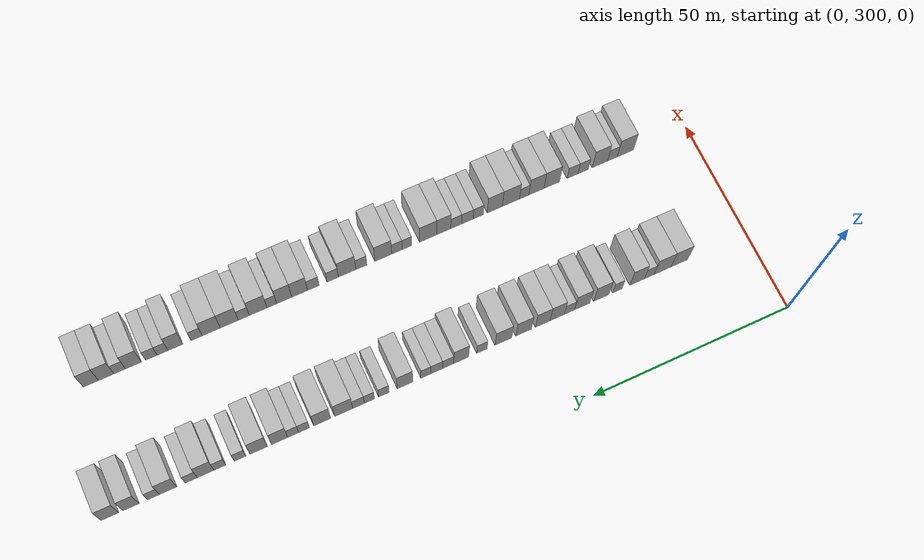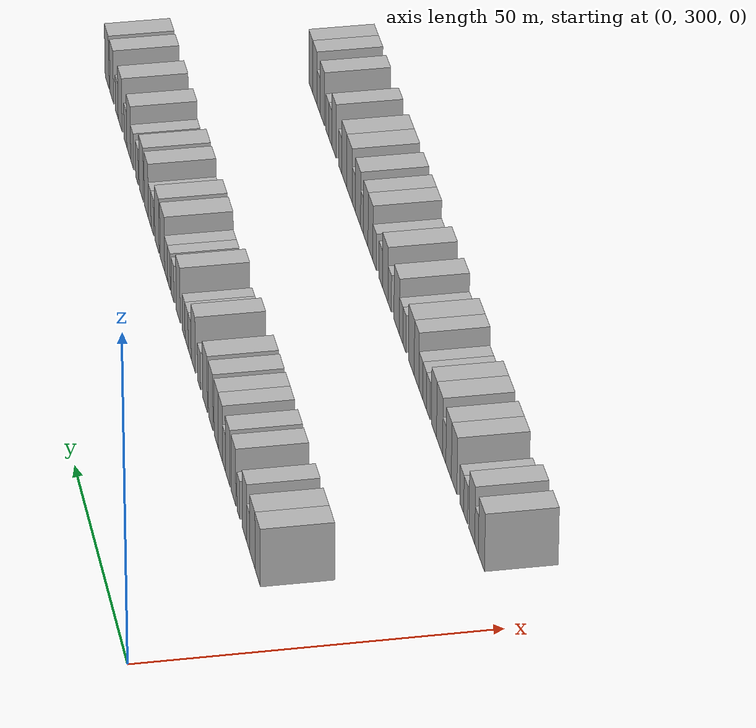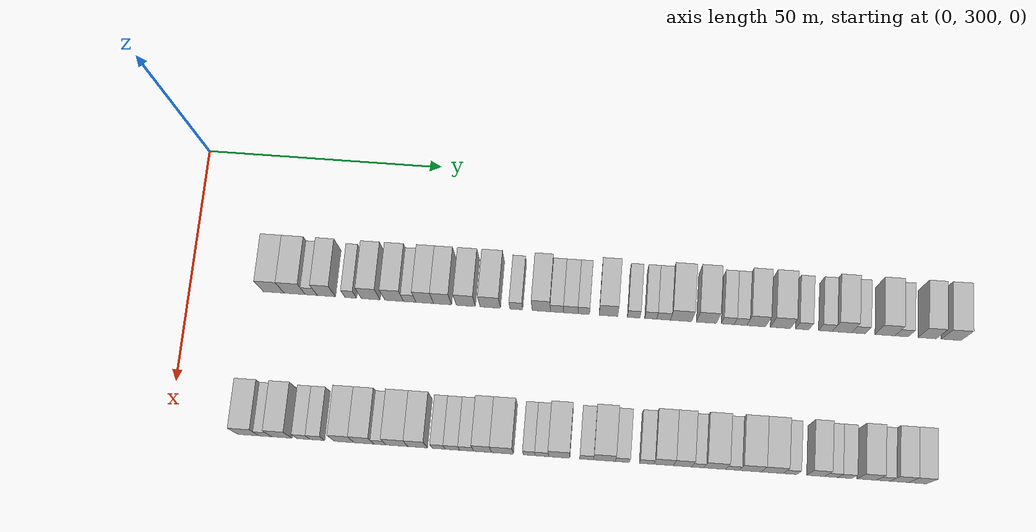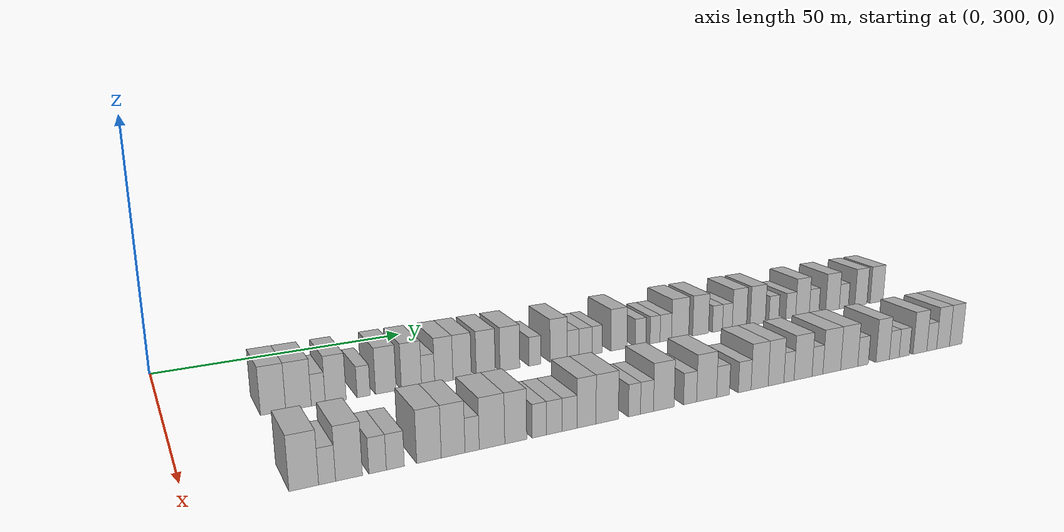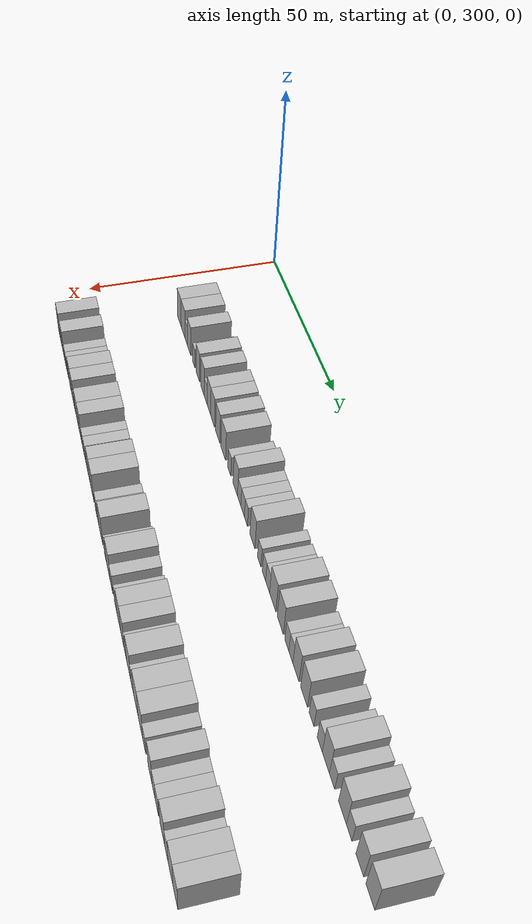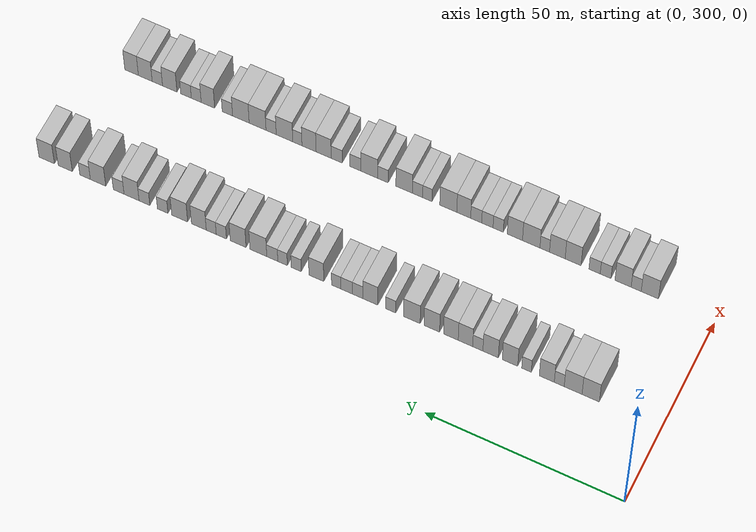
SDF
<sdf version="1.6">
 <world name="default">
  <model name="building_173">
   <static>1</static>
   <pose>25.0000 317.6659 0 0.000000 0.000000 0.000000</pose>
   <link name="link">
    <pose>0 0 4.50 0 0 0</pose>
    <collision name="collision"><geometry><box><size>10.0000 4.3493 9.0000</size></box></geometry></collision>
    <visual name="visual">
     <cast_shadows>0</cast_shadows>
     <geometry><box><size>10.0000 4.3493 9.0000</size></box></geometry>
     <material>
      <script>
       <uri>model://HANNAS_wall/materials/scripts</uri>
       <uri>model://HANNAS_wall/materials/textures</uri>
       <name>vrc/HANNAS_wall</name>
      </script>
     </material>
    </visual>
   </link>
  </model>
  <model name="building_174">
   <static>1</static>
   <pose>25.0000 322.0855 0 0.000000 0.000000 0.000000</pose>
   <link name="link">
    <pose>0 0 4.50 0 0 0</pose>
    <collision name="collision"><geometry><box><size>10.0000 4.4899 9.0000</size></box></geometry></collision>
    <visual name="visual">
     <cast_shadows>0</cast_shadows>
     <geometry><box><size>10.0000 4.4899 9.0000</size></box></geometry>
     <material>
      <script>
       <uri>model://HANNAS_wall/materials/scripts</uri>
       <uri>model://HANNAS_wall/materials/textures</uri>
       <name>vrc/HANNAS_wall</name>
      </script>
     </material>
    </visual>
   </link>
  </model>
  <model name="building_175">
   <static>1</static>
   <pose>25.0000 325.5803 0 0.000000 0.000000 0.000000</pose>
   <link name="link">
    <pose>0 0 3.00 0 0 0</pose>
    <collision name="collision"><geometry><box><size>10.0000 2.4997 6.0000</size></box></geometry></collision>
    <visual name="visual">
     <cast_shadows>0</cast_shadows>
     <geometry><box><size>10.0000 2.4997 6.0000</size></box></geometry>
     <material>
      <script>
       <uri>model://HANNAS_wall/materials/scripts</uri>
       <uri>model://HANNAS_wall/materials/textures</uri>
       <name>vrc/HANNAS_wall</name>
      </script>
     </material>
    </visual>
   </link>
  </model>
  <model name="building_176">
   <static>1</static>
   <pose>25.0000 328.7298 0 0.000000 0.000000 0.000000</pose>
   <link name="link">
    <pose>0 0 4.50 0 0 0</pose>
    <collision name="collision"><geometry><box><size>10.0000 3.7992 9.0000</size></box></geometry></collision>
    <visual name="visual">
     <cast_shadows>0</cast_shadows>
     <geometry><box><size>10.0000 3.7992 9.0000</size></box></geometry>
     <material>
      <script>
       <uri>model://HANNAS_wall/materials/scripts</uri>
       <uri>model://HANNAS_wall/materials/textures</uri>
       <name>vrc/HANNAS_wall</name>
      </script>
     </material>
    </visual>
   </link>
  </model>
  <model name="building_177">
   <static>1</static>
   <pose>25.0000 333.8471 0 0.000000 0.000000 0.000000</pose>
   <link name="link">
    <pose>0 0 3.00 0 0 0</pose>
    <collision name="collision"><geometry><box><size>10.0000 2.4356 6.0000</size></box></geometry></collision>
    <visual name="visual">
     <cast_shadows>0</cast_shadows>
     <geometry><box><size>10.0000 2.4356 6.0000</size></box></geometry>
     <material>
      <script>
       <uri>model://HANNAS_wall/materials/scripts</uri>
       <uri>model://HANNAS_wall/materials/textures</uri>
       <name>vrc/HANNAS_wall</name>
      </script>
     </material>
    </visual>
   </link>
  </model>
  <model name="building_178">
   <static>1</static>
   <pose>25.0000 338.0268 0 0.000000 0.000000 0.000000</pose>
   <link name="link">
    <pose>0 0 4.50 0 0 0</pose>
    <collision name="collision"><geometry><box><size>10.0000 3.9238 9.0000</size></box></geometry></collision>
    <visual name="visual">
     <cast_shadows>0</cast_shadows>
     <geometry><box><size>10.0000 3.9238 9.0000</size></box></geometry>
     <material>
      <script>
       <uri>model://HANNAS_wall/materials/scripts</uri>
       <uri>model://HANNAS_wall/materials/textures</uri>
       <name>vrc/HANNAS_wall</name>
      </script>
     </material>
    </visual>
   </link>
  </model>
  <model name="building_179">
   <static>1</static>
   <pose>25.0000 342.9497 0 0.000000 0.000000 0.000000</pose>
   <link name="link">
    <pose>0 0 4.50 0 0 0</pose>
    <collision name="collision"><geometry><box><size>10.0000 3.9221 9.0000</size></box></geometry></collision>
    <visual name="visual">
     <cast_shadows>0</cast_shadows>
     <geometry><box><size>10.0000 3.9221 9.0000</size></box></geometry>
     <material>
      <script>
       <uri>model://HANNAS_wall/materials/scripts</uri>
       <uri>model://HANNAS_wall/materials/textures</uri>
       <name>vrc/HANNAS_wall</name>
      </script>
     </material>
    </visual>
   </link>
  </model>
  <model name="building_180">
   <static>1</static>
   <pose>25.0000 346.2119 0 0.000000 0.000000 0.000000</pose>
   <link name="link">
    <pose>0 0 3.00 0 0 0</pose>
    <collision name="collision"><geometry><box><size>10.0000 2.6023 6.0000</size></box></geometry></collision>
    <visual name="visual">
     <cast_shadows>0</cast_shadows>
     <geometry><box><size>10.0000 2.6023 6.0000</size></box></geometry>
     <material>
      <script>
       <uri>model://HANNAS_wall/materials/scripts</uri>
       <uri>model://HANNAS_wall/materials/textures</uri>
       <name>vrc/HANNAS_wall</name>
      </script>
     </material>
    </visual>
   </link>
  </model>
  <model name="building_181">
   <static>1</static>
   <pose>25.0000 349.3515 0 0.000000 0.000000 0.000000</pose>
   <link name="link">
    <pose>0 0 4.50 0 0 0</pose>
    <collision name="collision"><geometry><box><size>10.0000 3.6768 9.0000</size></box></geometry></collision>
    <visual name="visual">
     <cast_shadows>0</cast_shadows>
     <geometry><box><size>10.0000 3.6768 9.0000</size></box></geometry>
     <material>
      <script>
       <uri>model://HANNAS_wall/materials/scripts</uri>
       <uri>model://HANNAS_wall/materials/textures</uri>
       <name>vrc/HANNAS_wall</name>
      </script>
     </material>
    </visual>
   </link>
  </model>
  <model name="building_182">
   <static>1</static>
   <pose>25.0000 353.0642 0 0.000000 0.000000 0.000000</pose>
   <link name="link">
    <pose>0 0 4.50 0 0 0</pose>
    <collision name="collision"><geometry><box><size>10.0000 3.7486 9.0000</size></box></geometry></collision>
    <visual name="visual">
     <cast_shadows>0</cast_shadows>
     <geometry><box><size>10.0000 3.7486 9.0000</size></box></geometry>
     <material>
      <script>
       <uri>model://HANNAS_wall/materials/scripts</uri>
       <uri>model://HANNAS_wall/materials/textures</uri>
       <name>vrc/HANNAS_wall</name>
      </script>
     </material>
    </visual>
   </link>
  </model>
  <model name="building_183">
   <static>1</static>
   <pose>25.0000 357.9284 0 0.000000 0.000000 0.000000</pose>
   <link name="link">
    <pose>0 0 4.50 0 0 0</pose>
    <collision name="collision"><geometry><box><size>10.0000 3.9799 9.0000</size></box></geometry></collision>
    <visual name="visual">
     <cast_shadows>0</cast_shadows>
     <geometry><box><size>10.0000 3.9799 9.0000</size></box></geometry>
     <material>
      <script>
       <uri>model://HANNAS_wall/materials/scripts</uri>
       <uri>model://HANNAS_wall/materials/textures</uri>
       <name>vrc/HANNAS_wall</name>
      </script>
     </material>
    </visual>
   </link>
  </model>
  <model name="building_184">
   <static>1</static>
   <pose>25.0000 363.0372 0 0.000000 0.000000 0.000000</pose>
   <link name="link">
    <pose>0 0 4.50 0 0 0</pose>
    <collision name="collision"><geometry><box><size>10.0000 4.2378 9.0000</size></box></geometry></collision>
    <visual name="visual">
     <cast_shadows>0</cast_shadows>
     <geometry><box><size>10.0000 4.2378 9.0000</size></box></geometry>
     <material>
      <script>
       <uri>model://HANNAS_wall/materials/scripts</uri>
       <uri>model://HANNAS_wall/materials/textures</uri>
       <name>vrc/HANNAS_wall</name>
      </script>
     </material>
    </visual>
   </link>
  </model>
  <model name="building_185">
   <static>1</static>
   <pose>25.0000 368.4719 0 0.000000 0.000000 0.000000</pose>
   <link name="link">
    <pose>0 0 3.00 0 0 0</pose>
    <collision name="collision"><geometry><box><size>10.0000 2.6317 6.0000</size></box></geometry></collision>
    <visual name="visual">
     <cast_shadows>0</cast_shadows>
     <geometry><box><size>10.0000 2.6317 6.0000</size></box></geometry>
     <material>
      <script>
       <uri>model://HANNAS_wall/materials/scripts</uri>
       <uri>model://HANNAS_wall/materials/textures</uri>
       <name>vrc/HANNAS_wall</name>
      </script>
     </material>
    </visual>
   </link>
  </model>
  <model name="building_186">
   <static>1</static>
   <pose>25.0000 373.6817 0 0.000000 0.000000 0.000000</pose>
   <link name="link">
    <pose>0 0 4.50 0 0 0</pose>
    <collision name="collision"><geometry><box><size>10.0000 3.7877 9.0000</size></box></geometry></collision>
    <visual name="visual">
     <cast_shadows>0</cast_shadows>
     <geometry><box><size>10.0000 3.7877 9.0000</size></box></geometry>
     <material>
      <script>
       <uri>model://HANNAS_wall/materials/scripts</uri>
       <uri>model://HANNAS_wall/materials/textures</uri>
       <name>vrc/HANNAS_wall</name>
      </script>
     </material>
    </visual>
   </link>
  </model>
  <model name="building_187">
   <static>1</static>
   <pose>25.0000 376.9540 0 0.000000 0.000000 0.000000</pose>
   <link name="link">
    <pose>0 0 3.00 0 0 0</pose>
    <collision name="collision"><geometry><box><size>10.0000 2.7570 6.0000</size></box></geometry></collision>
    <visual name="visual">
     <cast_shadows>0</cast_shadows>
     <geometry><box><size>10.0000 2.7570 6.0000</size></box></geometry>
     <material>
      <script>
       <uri>model://HANNAS_wall/materials/scripts</uri>
       <uri>model://HANNAS_wall/materials/textures</uri>
       <name>vrc/HANNAS_wall</name>
      </script>
     </material>
    </visual>
   </link>
  </model>
  <model name="building_188">
   <static>1</static>
   <pose>25.0000 379.8238 0 0.000000 0.000000 0.000000</pose>
   <link name="link">
    <pose>0 0 3.00 0 0 0</pose>
    <collision name="collision"><geometry><box><size>10.0000 2.9827 6.0000</size></box></geometry></collision>
    <visual name="visual">
     <cast_shadows>0</cast_shadows>
     <geometry><box><size>10.0000 2.9827 6.0000</size></box></geometry>
     <material>
      <script>
       <uri>model://HANNAS_wall/materials/scripts</uri>
       <uri>model://HANNAS_wall/materials/textures</uri>
       <name>vrc/HANNAS_wall</name>
      </script>
     </material>
    </visual>
   </link>
  </model>
  <model name="building_189">
   <static>1</static>
   <pose>25.0000 382.5248 0 0.000000 0.000000 0.000000</pose>
   <link name="link">
    <pose>0 0 3.00 0 0 0</pose>
    <collision name="collision"><geometry><box><size>10.0000 2.4192 6.0000</size></box></geometry></collision>
    <visual name="visual">
     <cast_shadows>0</cast_shadows>
     <geometry><box><size>10.0000 2.4192 6.0000</size></box></geometry>
     <material>
      <script>
       <uri>model://HANNAS_wall/materials/scripts</uri>
       <uri>model://HANNAS_wall/materials/textures</uri>
       <name>vrc/HANNAS_wall</name>
      </script>
     </material>
    </visual>
   </link>
  </model>
  <model name="building_190">
   <static>1</static>
   <pose>25.0000 387.6649 0 0.000000 0.000000 0.000000</pose>
   <link name="link">
    <pose>0 0 4.50 0 0 0</pose>
    <collision name="collision"><geometry><box><size>10.0000 3.8609 9.0000</size></box></geometry></collision>
    <visual name="visual">
     <cast_shadows>0</cast_shadows>
     <geometry><box><size>10.0000 3.8609 9.0000</size></box></geometry>
     <material>
      <script>
       <uri>model://HANNAS_wall/materials/scripts</uri>
       <uri>model://HANNAS_wall/materials/textures</uri>
       <name>vrc/HANNAS_wall</name>
      </script>
     </material>
    </visual>
   </link>
  </model>
  <model name="building_191">
   <static>1</static>
   <pose>25.0000 392.9015 0 0.000000 0.000000 0.000000</pose>
   <link name="link">
    <pose>0 0 3.00 0 0 0</pose>
    <collision name="collision"><geometry><box><size>10.0000 2.6124 6.0000</size></box></geometry></collision>
    <visual name="visual">
     <cast_shadows>0</cast_shadows>
     <geometry><box><size>10.0000 2.6124 6.0000</size></box></geometry>
     <material>
      <script>
       <uri>model://HANNAS_wall/materials/scripts</uri>
       <uri>model://HANNAS_wall/materials/textures</uri>
       <name>vrc/HANNAS_wall</name>
      </script>
     </material>
    </visual>
   </link>
  </model>
  <model name="building_192">
   <static>1</static>
   <pose>25.0000 396.4502 0 0.000000 0.000000 0.000000</pose>
   <link name="link">
    <pose>0 0 3.00 0 0 0</pose>
    <collision name="collision"><geometry><box><size>10.0000 2.4850 6.0000</size></box></geometry></collision>
    <visual name="visual">
     <cast_shadows>0</cast_shadows>
     <geometry><box><size>10.0000 2.4850 6.0000</size></box></geometry>
     <material>
      <script>
       <uri>model://HANNAS_wall/materials/scripts</uri>
       <uri>model://HANNAS_wall/materials/textures</uri>
       <name>vrc/HANNAS_wall</name>
      </script>
     </material>
    </visual>
   </link>
  </model>
  <model name="building_193">
   <static>1</static>
   <pose>25.0000 399.1308 0 0.000000 0.000000 0.000000</pose>
   <link name="link">
    <pose>0 0 3.00 0 0 0</pose>
    <collision name="collision"><geometry><box><size>10.0000 2.8762 6.0000</size></box></geometry></collision>
    <visual name="visual">
     <cast_shadows>0</cast_shadows>
     <geometry><box><size>10.0000 2.8762 6.0000</size></box></geometry>
     <material>
      <script>
       <uri>model://HANNAS_wall/materials/scripts</uri>
       <uri>model://HANNAS_wall/materials/textures</uri>
       <name>vrc/HANNAS_wall</name>
      </script>
     </material>
    </visual>
   </link>
  </model>
  <model name="building_194">
   <static>1</static>
   <pose>25.0000 402.7705 0 0.000000 0.000000 0.000000</pose>
   <link name="link">
    <pose>0 0 4.50 0 0 0</pose>
    <collision name="collision"><geometry><box><size>10.0000 4.4032 9.0000</size></box></geometry></collision>
    <visual name="visual">
     <cast_shadows>0</cast_shadows>
     <geometry><box><size>10.0000 4.4032 9.0000</size></box></geometry>
     <material>
      <script>
       <uri>model://HANNAS_wall/materials/scripts</uri>
       <uri>model://HANNAS_wall/materials/textures</uri>
       <name>vrc/HANNAS_wall</name>
      </script>
     </material>
    </visual>
   </link>
  </model>
  <model name="building_195">
   <static>1</static>
   <pose>25.0000 408.0443 0 0.000000 0.000000 0.000000</pose>
   <link name="link">
    <pose>0 0 4.50 0 0 0</pose>
    <collision name="collision"><geometry><box><size>10.0000 4.1444 9.0000</size></box></geometry></collision>
    <visual name="visual">
     <cast_shadows>0</cast_shadows>
     <geometry><box><size>10.0000 4.1444 9.0000</size></box></geometry>
     <material>
      <script>
       <uri>model://HANNAS_wall/materials/scripts</uri>
       <uri>model://HANNAS_wall/materials/textures</uri>
       <name>vrc/HANNAS_wall</name>
      </script>
     </material>
    </visual>
   </link>
  </model>
  <model name="building_196">
   <static>1</static>
   <pose>25.0000 412.4544 0 0.000000 0.000000 0.000000</pose>
   <link name="link">
    <pose>0 0 3.00 0 0 0</pose>
    <collision name="collision"><geometry><box><size>10.0000 2.6759 6.0000</size></box></geometry></collision>
    <visual name="visual">
     <cast_shadows>0</cast_shadows>
     <geometry><box><size>10.0000 2.6759 6.0000</size></box></geometry>
     <material>
      <script>
       <uri>model://HANNAS_wall/materials/scripts</uri>
       <uri>model://HANNAS_wall/materials/textures</uri>
       <name>vrc/HANNAS_wall</name>
      </script>
     </material>
    </visual>
   </link>
  </model>
  <model name="building_197">
   <static>1</static>
   <pose>25.0000 415.1013 0 0.000000 0.000000 0.000000</pose>
   <link name="link">
    <pose>0 0 3.00 0 0 0</pose>
    <collision name="collision"><geometry><box><size>10.0000 2.6178 6.0000</size></box></geometry></collision>
    <visual name="visual">
     <cast_shadows>0</cast_shadows>
     <geometry><box><size>10.0000 2.6178 6.0000</size></box></geometry>
     <material>
      <script>
       <uri>model://HANNAS_wall/materials/scripts</uri>
       <uri>model://HANNAS_wall/materials/textures</uri>
       <name>vrc/HANNAS_wall</name>
      </script>
     </material>
    </visual>
   </link>
  </model>
  <model name="building_198">
   <static>1</static>
   <pose>25.0000 418.3592 0 0.000000 0.000000 0.000000</pose>
   <link name="link">
    <pose>0 0 4.50 0 0 0</pose>
    <collision name="collision"><geometry><box><size>10.0000 3.8979 9.0000</size></box></geometry></collision>
    <visual name="visual">
     <cast_shadows>0</cast_shadows>
     <geometry><box><size>10.0000 3.8979 9.0000</size></box></geometry>
     <material>
      <script>
       <uri>model://HANNAS_wall/materials/scripts</uri>
       <uri>model://HANNAS_wall/materials/textures</uri>
       <name>vrc/HANNAS_wall</name>
      </script>
     </material>
    </visual>
   </link>
  </model>
  <model name="building_199">
   <static>1</static>
   <pose>25.0000 423.4031 0 0.000000 0.000000 0.000000</pose>
   <link name="link">
    <pose>0 0 4.50 0 0 0</pose>
    <collision name="collision"><geometry><box><size>10.0000 4.1899 9.0000</size></box></geometry></collision>
    <visual name="visual">
     <cast_shadows>0</cast_shadows>
     <geometry><box><size>10.0000 4.1899 9.0000</size></box></geometry>
     <material>
      <script>
       <uri>model://HANNAS_wall/materials/scripts</uri>
       <uri>model://HANNAS_wall/materials/textures</uri>
       <name>vrc/HANNAS_wall</name>
      </script>
     </material>
    </visual>
   </link>
  </model>
  <model name="building_200">
   <static>1</static>
   <pose>25.0000 427.8955 0 0.000000 0.000000 0.000000</pose>
   <link name="link">
    <pose>0 0 3.00 0 0 0</pose>
    <collision name="collision"><geometry><box><size>10.0000 2.7950 6.0000</size></box></geometry></collision>
    <visual name="visual">
     <cast_shadows>0</cast_shadows>
     <geometry><box><size>10.0000 2.7950 6.0000</size></box></geometry>
     <material>
      <script>
       <uri>model://HANNAS_wall/materials/scripts</uri>
       <uri>model://HANNAS_wall/materials/textures</uri>
       <name>vrc/HANNAS_wall</name>
      </script>
     </material>
    </visual>
   </link>
  </model>
  <model name="building_201">
   <static>1</static>
   <pose>25.0000 432.7157 0 0.000000 0.000000 0.000000</pose>
   <link name="link">
    <pose>0 0 3.00 0 0 0</pose>
    <collision name="collision"><geometry><box><size>10.0000 2.8453 6.0000</size></box></geometry></collision>
    <visual name="visual">
     <cast_shadows>0</cast_shadows>
     <geometry><box><size>10.0000 2.8453 6.0000</size></box></geometry>
     <material>
      <script>
       <uri>model://HANNAS_wall/materials/scripts</uri>
       <uri>model://HANNAS_wall/materials/textures</uri>
       <name>vrc/HANNAS_wall</name>
      </script>
     </material>
    </visual>
   </link>
  </model>
  <model name="building_202">
   <static>1</static>
   <pose>25.0000 436.1262 0 0.000000 0.000000 0.000000</pose>
   <link name="link">
    <pose>0 0 4.50 0 0 0</pose>
    <collision name="collision"><geometry><box><size>10.0000 3.9758 9.0000</size></box></geometry></collision>
    <visual name="visual">
     <cast_shadows>0</cast_shadows>
     <geometry><box><size>10.0000 3.9758 9.0000</size></box></geometry>
     <material>
      <script>
       <uri>model://HANNAS_wall/materials/scripts</uri>
       <uri>model://HANNAS_wall/materials/textures</uri>
       <name>vrc/HANNAS_wall</name>
      </script>
     </material>
    </visual>
   </link>
  </model>
  <model name="building_203">
   <static>1</static>
   <pose>25.0000 439.5477 0 0.000000 0.000000 0.000000</pose>
   <link name="link">
    <pose>0 0 3.00 0 0 0</pose>
    <collision name="collision"><geometry><box><size>10.0000 2.8670 6.0000</size></box></geometry></collision>
    <visual name="visual">
     <cast_shadows>0</cast_shadows>
     <geometry><box><size>10.0000 2.8670 6.0000</size></box></geometry>
     <material>
      <script>
       <uri>model://HANNAS_wall/materials/scripts</uri>
       <uri>model://HANNAS_wall/materials/textures</uri>
       <name>vrc/HANNAS_wall</name>
      </script>
     </material>
    </visual>
   </link>
  </model>
  <model name="building_204">
   <static>1</static>
   <pose>25.0000 445.0369 0 0.000000 0.000000 0.000000</pose>
   <link name="link">
    <pose>0 0 4.50 0 0 0</pose>
    <collision name="collision"><geometry><box><size>10.0000 4.1113 9.0000</size></box></geometry></collision>
    <visual name="visual">
     <cast_shadows>0</cast_shadows>
     <geometry><box><size>10.0000 4.1113 9.0000</size></box></geometry>
     <material>
      <script>
       <uri>model://HANNAS_wall/materials/scripts</uri>
       <uri>model://HANNAS_wall/materials/textures</uri>
       <name>vrc/HANNAS_wall</name>
      </script>
     </material>
    </visual>
   </link>
  </model>
  <model name="building_205">
   <static>1</static>
   <pose>25.0000 448.4899 0 0.000000 0.000000 0.000000</pose>
   <link name="link">
    <pose>0 0 3.00 0 0 0</pose>
    <collision name="collision"><geometry><box><size>10.0000 2.7947 6.0000</size></box></geometry></collision>
    <visual name="visual">
     <cast_shadows>0</cast_shadows>
     <geometry><box><size>10.0000 2.7947 6.0000</size></box></geometry>
     <material>
      <script>
       <uri>model://HANNAS_wall/materials/scripts</uri>
       <uri>model://HANNAS_wall/materials/textures</uri>
       <name>vrc/HANNAS_wall</name>
      </script>
     </material>
    </visual>
   </link>
  </model>
  <model name="building_206">
   <static>1</static>
   <pose>25.0000 453.7785 0 0.000000 0.000000 0.000000</pose>
   <link name="link">
    <pose>0 0 4.50 0 0 0</pose>
    <collision name="collision"><geometry><box><size>10.0000 3.7824 9.0000</size></box></geometry></collision>
    <visual name="visual">
     <cast_shadows>0</cast_shadows>
     <geometry><box><size>10.0000 3.7824 9.0000</size></box></geometry>
     <material>
      <script>
       <uri>model://HANNAS_wall/materials/scripts</uri>
       <uri>model://HANNAS_wall/materials/textures</uri>
       <name>vrc/HANNAS_wall</name>
      </script>
     </material>
    </visual>
   </link>
  </model>
  <model name="building_207">
   <static>1</static>
   <pose>25.0000 458.7390 0 0.000000 0.000000 0.000000</pose>
   <link name="link">
    <pose>0 0 4.50 0 0 0</pose>
    <collision name="collision"><geometry><box><size>10.0000 4.1386 9.0000</size></box></geometry></collision>
    <visual name="visual">
     <cast_shadows>0</cast_shadows>
     <geometry><box><size>10.0000 4.1386 9.0000</size></box></geometry>
     <material>
      <script>
       <uri>model://HANNAS_wall/materials/scripts</uri>
       <uri>model://HANNAS_wall/materials/textures</uri>
       <name>vrc/HANNAS_wall</name>
      </script>
     </material>
    </visual>
   </link>
  </model>
  <model name="building_405">
   <static>1</static>
   <pose>55.0000 316.3804 0 0.000000 0.000000 0.000000</pose>
   <link name="link">
    <pose>0 0 4.50 0 0 0</pose>
    <collision name="collision"><geometry><box><size>10.0000 4.3735 9.0000</size></box></geometry></collision>
    <visual name="visual">
     <cast_shadows>0</cast_shadows>
     <geometry><box><size>10.0000 4.3735 9.0000</size></box></geometry>
     <material>
      <script>
       <uri>model://HANNAS_wall/materials/scripts</uri>
       <uri>model://HANNAS_wall/materials/textures</uri>
       <name>vrc/HANNAS_wall</name>
      </script>
     </material>
    </visual>
   </link>
  </model>
  <model name="building_406">
   <static>1</static>
   <pose>55.0000 319.8456 0 0.000000 0.000000 0.000000</pose>
   <link name="link">
    <pose>0 0 3.00 0 0 0</pose>
    <collision name="collision"><geometry><box><size>10.0000 2.5569 6.0000</size></box></geometry></collision>
    <visual name="visual">
     <cast_shadows>0</cast_shadows>
     <geometry><box><size>10.0000 2.5569 6.0000</size></box></geometry>
     <material>
      <script>
       <uri>model://HANNAS_wall/materials/scripts</uri>
       <uri>model://HANNAS_wall/materials/textures</uri>
       <name>vrc/HANNAS_wall</name>
      </script>
     </material>
    </visual>
   </link>
  </model>
  <model name="building_407">
   <static>1</static>
   <pose>55.0000 323.1867 0 0.000000 0.000000 0.000000</pose>
   <link name="link">
    <pose>0 0 4.50 0 0 0</pose>
    <collision name="collision"><geometry><box><size>10.0000 4.1251 9.0000</size></box></geometry></collision>
    <visual name="visual">
     <cast_shadows>0</cast_shadows>
     <geometry><box><size>10.0000 4.1251 9.0000</size></box></geometry>
     <material>
      <script>
       <uri>model://HANNAS_wall/materials/scripts</uri>
       <uri>model://HANNAS_wall/materials/textures</uri>
       <name>vrc/HANNAS_wall</name>
      </script>
     </material>
    </visual>
   </link>
  </model>
  <model name="building_408">
   <static>1</static>
   <pose>55.0000 327.6268 0 0.000000 0.000000 0.000000</pose>
   <link name="link">
    <pose>0 0 3.00 0 0 0</pose>
    <collision name="collision"><geometry><box><size>10.0000 2.7550 6.0000</size></box></geometry></collision>
    <visual name="visual">
     <cast_shadows>0</cast_shadows>
     <geometry><box><size>10.0000 2.7550 6.0000</size></box></geometry>
     <material>
      <script>
       <uri>model://HANNAS_wall/materials/scripts</uri>
       <uri>model://HANNAS_wall/materials/textures</uri>
       <name>vrc/HANNAS_wall</name>
      </script>
     </material>
    </visual>
   </link>
  </model>
  <model name="building_409">
   <static>1</static>
   <pose>55.0000 330.4496 0 0.000000 0.000000 0.000000</pose>
   <link name="link">
    <pose>0 0 3.00 0 0 0</pose>
    <collision name="collision"><geometry><box><size>10.0000 2.8907 6.0000</size></box></geometry></collision>
    <visual name="visual">
     <cast_shadows>0</cast_shadows>
     <geometry><box><size>10.0000 2.8907 6.0000</size></box></geometry>
     <material>
      <script>
       <uri>model://HANNAS_wall/materials/scripts</uri>
       <uri>model://HANNAS_wall/materials/textures</uri>
       <name>vrc/HANNAS_wall</name>
      </script>
     </material>
    </visual>
   </link>
  </model>
  <model name="building_410">
   <static>1</static>
   <pose>55.0000 335.9337 0 0.000000 0.000000 0.000000</pose>
   <link name="link">
    <pose>0 0 4.50 0 0 0</pose>
    <collision name="collision"><geometry><box><size>10.0000 4.0775 9.0000</size></box></geometry></collision>
    <visual name="visual">
     <cast_shadows>0</cast_shadows>
     <geometry><box><size>10.0000 4.0775 9.0000</size></box></geometry>
     <material>
      <script>
       <uri>model://HANNAS_wall/materials/scripts</uri>
       <uri>model://HANNAS_wall/materials/textures</uri>
       <name>vrc/HANNAS_wall</name>
      </script>
     </material>
    </visual>
   </link>
  </model>
  <model name="building_411">
   <static>1</static>
   <pose>55.0000 339.9815 0 0.000000 0.000000 0.000000</pose>
   <link name="link">
    <pose>0 0 4.50 0 0 0</pose>
    <collision name="collision"><geometry><box><size>10.0000 4.0181 9.0000</size></box></geometry></collision>
    <visual name="visual">
     <cast_shadows>0</cast_shadows>
     <geometry><box><size>10.0000 4.0181 9.0000</size></box></geometry>
     <material>
      <script>
       <uri>model://HANNAS_wall/materials/scripts</uri>
       <uri>model://HANNAS_wall/materials/textures</uri>
       <name>vrc/HANNAS_wall</name>
      </script>
     </material>
    </visual>
   </link>
  </model>
  <model name="building_412">
   <static>1</static>
   <pose>55.0000 343.2136 0 0.000000 0.000000 0.000000</pose>
   <link name="link">
    <pose>0 0 3.00 0 0 0</pose>
    <collision name="collision"><geometry><box><size>10.0000 2.4461 6.0000</size></box></geometry></collision>
    <visual name="visual">
     <cast_shadows>0</cast_shadows>
     <geometry><box><size>10.0000 2.4461 6.0000</size></box></geometry>
     <material>
      <script>
       <uri>model://HANNAS_wall/materials/scripts</uri>
       <uri>model://HANNAS_wall/materials/textures</uri>
       <name>vrc/HANNAS_wall</name>
      </script>
     </material>
    </visual>
   </link>
  </model>
  <model name="building_413">
   <static>1</static>
   <pose>55.0000 346.6819 0 0.000000 0.000000 0.000000</pose>
   <link name="link">
    <pose>0 0 4.50 0 0 0</pose>
    <collision name="collision"><geometry><box><size>10.0000 4.4905 9.0000</size></box></geometry></collision>
    <visual name="visual">
     <cast_shadows>0</cast_shadows>
     <geometry><box><size>10.0000 4.4905 9.0000</size></box></geometry>
     <material>
      <script>
       <uri>model://HANNAS_wall/materials/scripts</uri>
       <uri>model://HANNAS_wall/materials/textures</uri>
       <name>vrc/HANNAS_wall</name>
      </script>
     </material>
    </visual>
   </link>
  </model>
  <model name="building_414">
   <static>1</static>
   <pose>55.0000 350.8985 0 0.000000 0.000000 0.000000</pose>
   <link name="link">
    <pose>0 0 4.50 0 0 0</pose>
    <collision name="collision"><geometry><box><size>10.0000 3.9427 9.0000</size></box></geometry></collision>
    <visual name="visual">
     <cast_shadows>0</cast_shadows>
     <geometry><box><size>10.0000 3.9427 9.0000</size></box></geometry>
     <material>
      <script>
       <uri>model://HANNAS_wall/materials/scripts</uri>
       <uri>model://HANNAS_wall/materials/textures</uri>
       <name>vrc/HANNAS_wall</name>
      </script>
     </material>
    </visual>
   </link>
  </model>
  <model name="building_415">
   <static>1</static>
   <pose>55.0000 355.1957 0 0.000000 0.000000 0.000000</pose>
   <link name="link">
    <pose>0 0 3.00 0 0 0</pose>
    <collision name="collision"><geometry><box><size>10.0000 2.6518 6.0000</size></box></geometry></collision>
    <visual name="visual">
     <cast_shadows>0</cast_shadows>
     <geometry><box><size>10.0000 2.6518 6.0000</size></box></geometry>
     <material>
      <script>
       <uri>model://HANNAS_wall/materials/scripts</uri>
       <uri>model://HANNAS_wall/materials/textures</uri>
       <name>vrc/HANNAS_wall</name>
      </script>
     </material>
    </visual>
   </link>
  </model>
  <model name="building_416">
   <static>1</static>
   <pose>55.0000 357.9934 0 0.000000 0.000000 0.000000</pose>
   <link name="link">
    <pose>0 0 3.00 0 0 0</pose>
    <collision name="collision"><geometry><box><size>10.0000 2.9436 6.0000</size></box></geometry></collision>
    <visual name="visual">
     <cast_shadows>0</cast_shadows>
     <geometry><box><size>10.0000 2.9436 6.0000</size></box></geometry>
     <material>
      <script>
       <uri>model://HANNAS_wall/materials/scripts</uri>
       <uri>model://HANNAS_wall/materials/textures</uri>
       <name>vrc/HANNAS_wall</name>
      </script>
     </material>
    </visual>
   </link>
  </model>
  <model name="building_417">
   <static>1</static>
   <pose>55.0000 360.8861 0 0.000000 0.000000 0.000000</pose>
   <link name="link">
    <pose>0 0 3.00 0 0 0</pose>
    <collision name="collision"><geometry><box><size>10.0000 2.8417 6.0000</size></box></geometry></collision>
    <visual name="visual">
     <cast_shadows>0</cast_shadows>
     <geometry><box><size>10.0000 2.8417 6.0000</size></box></geometry>
     <material>
      <script>
       <uri>model://HANNAS_wall/materials/scripts</uri>
       <uri>model://HANNAS_wall/materials/textures</uri>
       <name>vrc/HANNAS_wall</name>
      </script>
     </material>
    </visual>
   </link>
  </model>
  <model name="building_418">
   <static>1</static>
   <pose>55.0000 364.1110 0 0.000000 0.000000 0.000000</pose>
   <link name="link">
    <pose>0 0 4.50 0 0 0</pose>
    <collision name="collision"><geometry><box><size>10.0000 3.6082 9.0000</size></box></geometry></collision>
    <visual name="visual">
     <cast_shadows>0</cast_shadows>
     <geometry><box><size>10.0000 3.6082 9.0000</size></box></geometry>
     <material>
      <script>
       <uri>model://HANNAS_wall/materials/scripts</uri>
       <uri>model://HANNAS_wall/materials/textures</uri>
       <name>vrc/HANNAS_wall</name>
      </script>
     </material>
    </visual>
   </link>
  </model>
  <model name="building_419">
   <static>1</static>
   <pose>55.0000 368.1293 0 0.000000 0.000000 0.000000</pose>
   <link name="link">
    <pose>0 0 4.50 0 0 0</pose>
    <collision name="collision"><geometry><box><size>10.0000 4.4283 9.0000</size></box></geometry></collision>
    <visual name="visual">
     <cast_shadows>0</cast_shadows>
     <geometry><box><size>10.0000 4.4283 9.0000</size></box></geometry>
     <material>
      <script>
       <uri>model://HANNAS_wall/materials/scripts</uri>
       <uri>model://HANNAS_wall/materials/textures</uri>
       <name>vrc/HANNAS_wall</name>
      </script>
     </material>
    </visual>
   </link>
  </model>
  <model name="building_420">
   <static>1</static>
   <pose>55.0000 373.5608 0 0.000000 0.000000 0.000000</pose>
   <link name="link">
    <pose>0 0 3.00 0 0 0</pose>
    <collision name="collision"><geometry><box><size>10.0000 2.4349 6.0000</size></box></geometry></collision>
    <visual name="visual">
     <cast_shadows>0</cast_shadows>
     <geometry><box><size>10.0000 2.4349 6.0000</size></box></geometry>
     <material>
      <script>
       <uri>model://HANNAS_wall/materials/scripts</uri>
       <uri>model://HANNAS_wall/materials/textures</uri>
       <name>vrc/HANNAS_wall</name>
      </script>
     </material>
    </visual>
   </link>
  </model>
  <model name="building_421">
   <static>1</static>
   <pose>55.0000 376.1167 0 0.000000 0.000000 0.000000</pose>
   <link name="link">
    <pose>0 0 3.00 0 0 0</pose>
    <collision name="collision"><geometry><box><size>10.0000 2.6769 6.0000</size></box></geometry></collision>
    <visual name="visual">
     <cast_shadows>0</cast_shadows>
     <geometry><box><size>10.0000 2.6769 6.0000</size></box></geometry>
     <material>
      <script>
       <uri>model://HANNAS_wall/materials/scripts</uri>
       <uri>model://HANNAS_wall/materials/textures</uri>
       <name>vrc/HANNAS_wall</name>
      </script>
     </material>
    </visual>
   </link>
  </model>
  <model name="building_422">
   <static>1</static>
   <pose>55.0000 379.6149 0 0.000000 0.000000 0.000000</pose>
   <link name="link">
    <pose>0 0 4.50 0 0 0</pose>
    <collision name="collision"><geometry><box><size>10.0000 4.3194 9.0000</size></box></geometry></collision>
    <visual name="visual">
     <cast_shadows>0</cast_shadows>
     <geometry><box><size>10.0000 4.3194 9.0000</size></box></geometry>
     <material>
      <script>
       <uri>model://HANNAS_wall/materials/scripts</uri>
       <uri>model://HANNAS_wall/materials/textures</uri>
       <name>vrc/HANNAS_wall</name>
      </script>
     </material>
    </visual>
   </link>
  </model>
  <model name="building_423">
   <static>1</static>
   <pose>55.0000 385.1810 0 0.000000 0.000000 0.000000</pose>
   <link name="link">
    <pose>0 0 3.00 0 0 0</pose>
    <collision name="collision"><geometry><box><size>10.0000 2.8127 6.0000</size></box></geometry></collision>
    <visual name="visual">
     <cast_shadows>0</cast_shadows>
     <geometry><box><size>10.0000 2.8127 6.0000</size></box></geometry>
     <material>
      <script>
       <uri>model://HANNAS_wall/materials/scripts</uri>
       <uri>model://HANNAS_wall/materials/textures</uri>
       <name>vrc/HANNAS_wall</name>
      </script>
     </material>
    </visual>
   </link>
  </model>
  <model name="building_424">
   <static>1</static>
   <pose>55.0000 388.7812 0 0.000000 0.000000 0.000000</pose>
   <link name="link">
    <pose>0 0 4.50 0 0 0</pose>
    <collision name="collision"><geometry><box><size>10.0000 4.3877 9.0000</size></box></geometry></collision>
    <visual name="visual">
     <cast_shadows>0</cast_shadows>
     <geometry><box><size>10.0000 4.3877 9.0000</size></box></geometry>
     <material>
      <script>
       <uri>model://HANNAS_wall/materials/scripts</uri>
       <uri>model://HANNAS_wall/materials/textures</uri>
       <name>vrc/HANNAS_wall</name>
      </script>
     </material>
    </visual>
   </link>
  </model>
  <model name="building_425">
   <static>1</static>
   <pose>55.0000 392.4083 0 0.000000 0.000000 0.000000</pose>
   <link name="link">
    <pose>0 0 3.00 0 0 0</pose>
    <collision name="collision"><geometry><box><size>10.0000 2.8664 6.0000</size></box></geometry></collision>
    <visual name="visual">
     <cast_shadows>0</cast_shadows>
     <geometry><box><size>10.0000 2.8664 6.0000</size></box></geometry>
     <material>
      <script>
       <uri>model://HANNAS_wall/materials/scripts</uri>
       <uri>model://HANNAS_wall/materials/textures</uri>
       <name>vrc/HANNAS_wall</name>
      </script>
     </material>
    </visual>
   </link>
  </model>
  <model name="building_426">
   <static>1</static>
   <pose>55.0000 397.2962 0 0.000000 0.000000 0.000000</pose>
   <link name="link">
    <pose>0 0 3.00 0 0 0</pose>
    <collision name="collision"><geometry><box><size>10.0000 2.9095 6.0000</size></box></geometry></collision>
    <visual name="visual">
     <cast_shadows>0</cast_shadows>
     <geometry><box><size>10.0000 2.9095 6.0000</size></box></geometry>
     <material>
      <script>
       <uri>model://HANNAS_wall/materials/scripts</uri>
       <uri>model://HANNAS_wall/materials/textures</uri>
       <name>vrc/HANNAS_wall</name>
      </script>
     </material>
    </visual>
   </link>
  </model>
  <model name="building_427">
   <static>1</static>
   <pose>55.0000 400.7409 0 0.000000 0.000000 0.000000</pose>
   <link name="link">
    <pose>0 0 4.50 0 0 0</pose>
    <collision name="collision"><geometry><box><size>10.0000 3.9798 9.0000</size></box></geometry></collision>
    <visual name="visual">
     <cast_shadows>0</cast_shadows>
     <geometry><box><size>10.0000 3.9798 9.0000</size></box></geometry>
     <material>
      <script>
       <uri>model://HANNAS_wall/materials/scripts</uri>
       <uri>model://HANNAS_wall/materials/textures</uri>
       <name>vrc/HANNAS_wall</name>
      </script>
     </material>
    </visual>
   </link>
  </model>
  <model name="building_428">
   <static>1</static>
   <pose>55.0000 404.5978 0 0.000000 0.000000 0.000000</pose>
   <link name="link">
    <pose>0 0 4.50 0 0 0</pose>
    <collision name="collision"><geometry><box><size>10.0000 3.7340 9.0000</size></box></geometry></collision>
    <visual name="visual">
     <cast_shadows>0</cast_shadows>
     <geometry><box><size>10.0000 3.7340 9.0000</size></box></geometry>
     <material>
      <script>
       <uri>model://HANNAS_wall/materials/scripts</uri>
       <uri>model://HANNAS_wall/materials/textures</uri>
       <name>vrc/HANNAS_wall</name>
      </script>
     </material>
    </visual>
   </link>
  </model>
  <model name="building_429">
   <static>1</static>
   <pose>55.0000 407.6778 0 0.000000 0.000000 0.000000</pose>
   <link name="link">
    <pose>0 0 3.00 0 0 0</pose>
    <collision name="collision"><geometry><box><size>10.0000 2.4259 6.0000</size></box></geometry></collision>
    <visual name="visual">
     <cast_shadows>0</cast_shadows>
     <geometry><box><size>10.0000 2.4259 6.0000</size></box></geometry>
     <material>
      <script>
       <uri>model://HANNAS_wall/materials/scripts</uri>
       <uri>model://HANNAS_wall/materials/textures</uri>
       <name>vrc/HANNAS_wall</name>
      </script>
     </material>
    </visual>
   </link>
  </model>
  <model name="building_430">
   <static>1</static>
   <pose>55.0000 411.0859 0 0.000000 0.000000 0.000000</pose>
   <link name="link">
    <pose>0 0 4.50 0 0 0</pose>
    <collision name="collision"><geometry><box><size>10.0000 4.3903 9.0000</size></box></geometry></collision>
    <visual name="visual">
     <cast_shadows>0</cast_shadows>
     <geometry><box><size>10.0000 4.3903 9.0000</size></box></geometry>
     <material>
      <script>
       <uri>model://HANNAS_wall/materials/scripts</uri>
       <uri>model://HANNAS_wall/materials/textures</uri>
       <name>vrc/HANNAS_wall</name>
      </script>
     </material>
    </visual>
   </link>
  </model>
  <model name="building_431">
   <static>1</static>
   <pose>55.0000 414.6365 0 0.000000 0.000000 0.000000</pose>
   <link name="link">
    <pose>0 0 3.00 0 0 0</pose>
    <collision name="collision"><geometry><box><size>10.0000 2.7110 6.0000</size></box></geometry></collision>
    <visual name="visual">
     <cast_shadows>0</cast_shadows>
     <geometry><box><size>10.0000 2.7110 6.0000</size></box></geometry>
     <material>
      <script>
       <uri>model://HANNAS_wall/materials/scripts</uri>
       <uri>model://HANNAS_wall/materials/textures</uri>
       <name>vrc/HANNAS_wall</name>
      </script>
     </material>
    </visual>
   </link>
  </model>
  <model name="building_432">
   <static>1</static>
   <pose>55.0000 418.2327 0 0.000000 0.000000 0.000000</pose>
   <link name="link">
    <pose>0 0 4.50 0 0 0</pose>
    <collision name="collision"><geometry><box><size>10.0000 4.4814 9.0000</size></box></geometry></collision>
    <visual name="visual">
     <cast_shadows>0</cast_shadows>
     <geometry><box><size>10.0000 4.4814 9.0000</size></box></geometry>
     <material>
      <script>
       <uri>model://HANNAS_wall/materials/scripts</uri>
       <uri>model://HANNAS_wall/materials/textures</uri>
       <name>vrc/HANNAS_wall</name>
      </script>
     </material>
    </visual>
   </link>
  </model>
  <model name="building_433">
   <static>1</static>
   <pose>55.0000 422.6799 0 0.000000 0.000000 0.000000</pose>
   <link name="link">
    <pose>0 0 4.50 0 0 0</pose>
    <collision name="collision"><geometry><box><size>10.0000 4.4131 9.0000</size></box></geometry></collision>
    <visual name="visual">
     <cast_shadows>0</cast_shadows>
     <geometry><box><size>10.0000 4.4131 9.0000</size></box></geometry>
     <material>
      <script>
       <uri>model://HANNAS_wall/materials/scripts</uri>
       <uri>model://HANNAS_wall/materials/textures</uri>
       <name>vrc/HANNAS_wall</name>
      </script>
     </material>
    </visual>
   </link>
  </model>
  <model name="building_434">
   <static>1</static>
   <pose>55.0000 426.2723 0 0.000000 0.000000 0.000000</pose>
   <link name="link">
    <pose>0 0 3.00 0 0 0</pose>
    <collision name="collision"><geometry><box><size>10.0000 2.7718 6.0000</size></box></geometry></collision>
    <visual name="visual">
     <cast_shadows>0</cast_shadows>
     <geometry><box><size>10.0000 2.7718 6.0000</size></box></geometry>
     <material>
      <script>
       <uri>model://HANNAS_wall/materials/scripts</uri>
       <uri>model://HANNAS_wall/materials/textures</uri>
       <name>vrc/HANNAS_wall</name>
      </script>
     </material>
    </visual>
   </link>
  </model>
  <model name="building_435">
   <static>1</static>
   <pose>55.0000 431.4642 0 0.000000 0.000000 0.000000</pose>
   <link name="link">
    <pose>0 0 4.50 0 0 0</pose>
    <collision name="collision"><geometry><box><size>10.0000 3.6121 9.0000</size></box></geometry></collision>
    <visual name="visual">
     <cast_shadows>0</cast_shadows>
     <geometry><box><size>10.0000 3.6121 9.0000</size></box></geometry>
     <material>
      <script>
       <uri>model://HANNAS_wall/materials/scripts</uri>
       <uri>model://HANNAS_wall/materials/textures</uri>
       <name>vrc/HANNAS_wall</name>
      </script>
     </material>
    </visual>
   </link>
  </model>
  <model name="building_436">
   <static>1</static>
   <pose>55.0000 434.5933 0 0.000000 0.000000 0.000000</pose>
   <link name="link">
    <pose>0 0 3.00 0 0 0</pose>
    <collision name="collision"><geometry><box><size>10.0000 2.6460 6.0000</size></box></geometry></collision>
    <visual name="visual">
     <cast_shadows>0</cast_shadows>
     <geometry><box><size>10.0000 2.6460 6.0000</size></box></geometry>
     <material>
      <script>
       <uri>model://HANNAS_wall/materials/scripts</uri>
       <uri>model://HANNAS_wall/materials/textures</uri>
       <name>vrc/HANNAS_wall</name>
      </script>
     </material>
    </visual>
   </link>
  </model>
  <model name="building_437">
   <static>1</static>
   <pose>55.0000 437.3329 0 0.000000 0.000000 0.000000</pose>
   <link name="link">
    <pose>0 0 3.00 0 0 0</pose>
    <collision name="collision"><geometry><box><size>10.0000 2.8333 6.0000</size></box></geometry></collision>
    <visual name="visual">
     <cast_shadows>0</cast_shadows>
     <geometry><box><size>10.0000 2.8333 6.0000</size></box></geometry>
     <material>
      <script>
       <uri>model://HANNAS_wall/materials/scripts</uri>
       <uri>model://HANNAS_wall/materials/textures</uri>
       <name>vrc/HANNAS_wall</name>
      </script>
     </material>
    </visual>
   </link>
  </model>
  <model name="building_438">
   <static>1</static>
   <pose>55.0000 441.6892 0 0.000000 0.000000 0.000000</pose>
   <link name="link">
    <pose>0 0 4.50 0 0 0</pose>
    <collision name="collision"><geometry><box><size>10.0000 3.8792 9.0000</size></box></geometry></collision>
    <visual name="visual">
     <cast_shadows>0</cast_shadows>
     <geometry><box><size>10.0000 3.8792 9.0000</size></box></geometry>
     <material>
      <script>
       <uri>model://HANNAS_wall/materials/scripts</uri>
       <uri>model://HANNAS_wall/materials/textures</uri>
       <name>vrc/HANNAS_wall</name>
      </script>
     </material>
    </visual>
   </link>
  </model>
  <model name="building_439">
   <static>1</static>
   <pose>55.0000 445.0221 0 0.000000 0.000000 0.000000</pose>
   <link name="link">
    <pose>0 0 3.00 0 0 0</pose>
    <collision name="collision"><geometry><box><size>10.0000 2.7865 6.0000</size></box></geometry></collision>
    <visual name="visual">
     <cast_shadows>0</cast_shadows>
     <geometry><box><size>10.0000 2.7865 6.0000</size></box></geometry>
     <material>
      <script>
       <uri>model://HANNAS_wall/materials/scripts</uri>
       <uri>model://HANNAS_wall/materials/textures</uri>
       <name>vrc/HANNAS_wall</name>
      </script>
     </material>
    </visual>
   </link>
  </model>
  <model name="building_440">
   <static>1</static>
   <pose>55.0000 448.2748 0 0.000000 0.000000 0.000000</pose>
   <link name="link">
    <pose>0 0 4.50 0 0 0</pose>
    <collision name="collision"><geometry><box><size>10.0000 3.7190 9.0000</size></box></geometry></collision>
    <visual name="visual">
     <cast_shadows>0</cast_shadows>
     <geometry><box><size>10.0000 3.7190 9.0000</size></box></geometry>
     <material>
      <script>
       <uri>model://HANNAS_wall/materials/scripts</uri>
       <uri>model://HANNAS_wall/materials/textures</uri>
       <name>vrc/HANNAS_wall</name>
      </script>
     </material>
    </visual>
   </link>
  </model>
  <model name="building_441">
   <static>1</static>
   <pose>55.0000 451.9637 0 0.000000 0.000000 0.000000</pose>
   <link name="link">
    <pose>0 0 4.50 0 0 0</pose>
    <collision name="collision"><geometry><box><size>10.0000 3.6588 9.0000</size></box></geometry></collision>
    <visual name="visual">
     <cast_shadows>0</cast_shadows>
     <geometry><box><size>10.0000 3.6588 9.0000</size></box></geometry>
     <material>
      <script>
       <uri>model://HANNAS_wall/materials/scripts</uri>
       <uri>model://HANNAS_wall/materials/textures</uri>
       <name>vrc/HANNAS_wall</name>
      </script>
     </material>
    </visual>
   </link>
  </model>
 </world>
</sdf>
